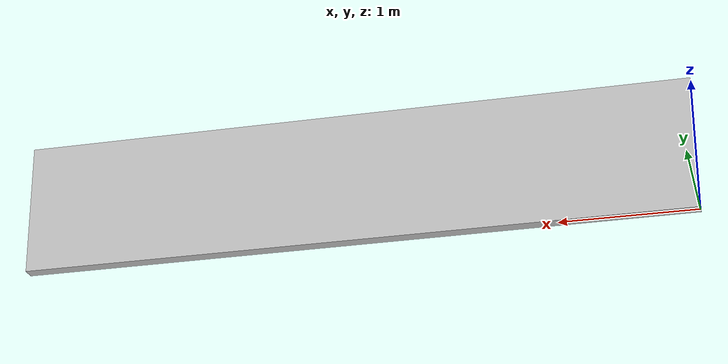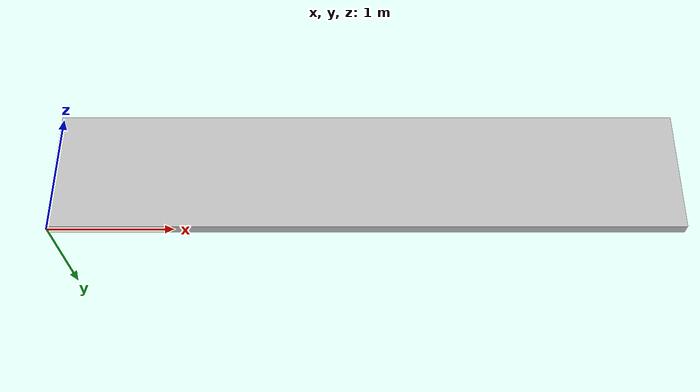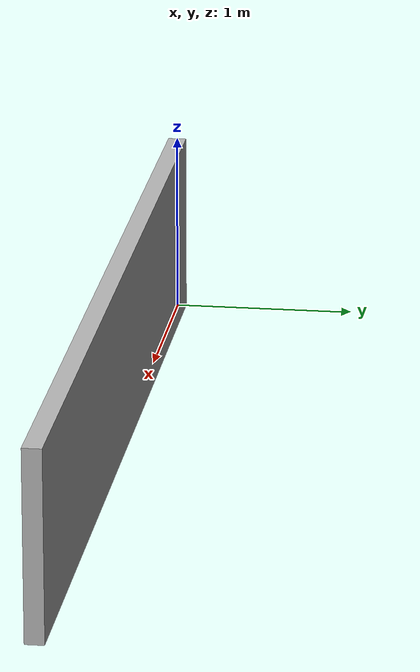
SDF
<?xml version='1.0'?>
<sdf version='1.4'>
  <model name="alley_wall">
    <static>true</static>
    <link name="wall">
      <pose>2.5 0 .5 0 0 0</pose>
      <collision name='collision'>
        <geometry>
          <box>
           <size>5 0.1 1</size>
          </box>
        </geometry>
      </collision>
      <visual name='visual'>
        <geometry>
          <box>
           <size>5 0.1 1</size>
          </box>
        </geometry>
      </visual>
    </link>
  </model>
</sdf>
